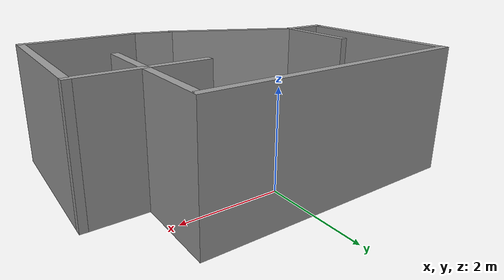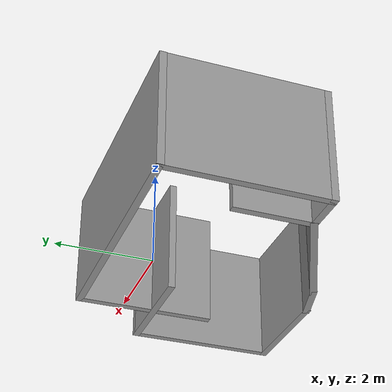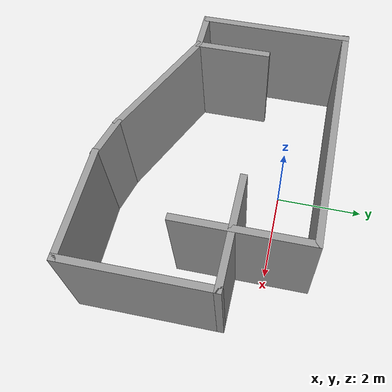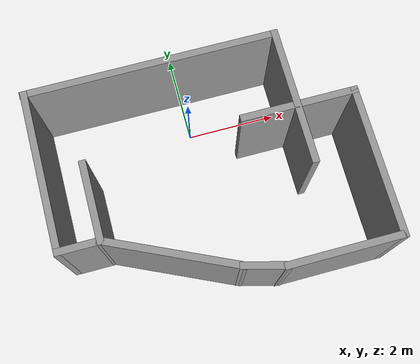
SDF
<?xml version='1.0'?>
<sdf version='1.7'>
  <model name='arena'>
    <pose>0.063599 -1.44493 0 0 -0 0</pose>
    <link name='Wall_10'>
      <collision name='Wall_10_Collision'>
        <geometry>
          <box>
            <size>1 0.15 2.5</size>
          </box>
        </geometry>
        <pose>0 0 1.25 0 -0 0</pose>
      </collision>
      <visual name='Wall_10_Visual'>
        <pose>0 0 1.25 0 -0 0</pose>
        <geometry>
          <box>
            <size>1 0.15 2.5</size>
          </box>
        </geometry>
        <material>
          <script>
            <uri>file://media/materials/scripts/gazebo.material</uri>
            <name>Gazebo/Grey</name>
          </script>
          <ambient>1 1 1 1</ambient>
        </material>
        <meta>
          <layer>0</layer>
        </meta>
      </visual>
      <pose>-2.8481 -0.969074 0 0 -0 0</pose>
    </link>
    <link name='Wall_13'>
      <collision name='Wall_13_Collision'>
        <geometry>
          <box>
            <size>2.94422 0.15 2.5</size>
          </box>
        </geometry>
        <pose>0 0 1.25 0 -0 0</pose>
      </collision>
      <visual name='Wall_13_Visual'>
        <pose>0 0 1.25 0 -0 0</pose>
        <geometry>
          <box>
            <size>2.94422 0.15 2.5</size>
          </box>
        </geometry>
        <material>
          <script>
            <uri>file://media/materials/scripts/gazebo.material</uri>
            <name>Gazebo/Grey</name>
          </script>
          <ambient>1 1 1 1</ambient>
        </material>
        <meta>
          <layer>0</layer>
        </meta>
      </visual>
      <pose>-1.15552 -1.55657 0 0 -0 -0.434009</pose>
    </link>
    <link name='Wall_14'>
      <collision name='Wall_14_Collision'>
        <geometry>
          <box>
            <size>1 0.15 2.5</size>
          </box>
        </geometry>
        <pose>0 0 1.25 0 -0 0</pose>
      </collision>
      <visual name='Wall_14_Visual'>
        <pose>0 0 1.25 0 -0 0</pose>
        <geometry>
          <box>
            <size>1 0.15 2.5</size>
          </box>
        </geometry>
        <material>
          <script>
            <uri>file://media/materials/scripts/gazebo.material</uri>
            <name>Gazebo/Grey</name>
          </script>
          <ambient>1 1 1 1</ambient>
        </material>
        <meta>
          <layer>0</layer>
        </meta>
      </visual>
      <pose>0.52258 -2.25407 0 0 -0 -0.261799</pose>
    </link>
    <link name='Wall_17'>
      <collision name='Wall_17_Collision'>
        <geometry>
          <box>
            <size>2.5 0.15 2.5</size>
          </box>
        </geometry>
        <pose>0 0 1.25 0 -0 0</pose>
      </collision>
      <visual name='Wall_17_Visual'>
        <pose>0 0 1.25 0 -0 0</pose>
        <geometry>
          <box>
            <size>2.5 0.15 2.5</size>
          </box>
        </geometry>
        <material>
          <script>
            <uri>file://media/materials/scripts/gazebo.material</uri>
            <name>Gazebo/Grey</name>
          </script>
          <ambient>1 1 1 1</ambient>
        </material>
        <meta>
          <layer>0</layer>
        </meta>
      </visual>
      <pose>2.1081 -2.36407 0 0 -0 0</pose>
    </link>
    <link name='Wall_18'>
      <collision name='Wall_18_Collision'>
        <geometry>
          <box>
            <size>3.25 0.15 2.5</size>
          </box>
        </geometry>
        <pose>0 0 1.25 0 -0 0</pose>
      </collision>
      <visual name='Wall_18_Visual'>
        <pose>0 0 1.25 0 -0 0</pose>
        <geometry>
          <box>
            <size>3.25 0.15 2.5</size>
          </box>
        </geometry>
        <material>
          <script>
            <uri>file://media/materials/scripts/gazebo.material</uri>
            <name>Gazebo/Grey</name>
          </script>
          <ambient>1 1 1 1</ambient>
        </material>
        <meta>
          <layer>0</layer>
        </meta>
      </visual>
      <pose>3.2831 -0.81407 0 0 -0 1.5708</pose>
    </link>
    <link name='Wall_19'>
      <collision name='Wall_19_Collision'>
        <geometry>
          <box>
            <size>2.5 0.15 2.5</size>
          </box>
        </geometry>
        <pose>0 0 1.25 0 -0 0</pose>
      </collision>
      <visual name='Wall_19_Visual'>
        <pose>0 0 1.25 0 -0 0</pose>
        <geometry>
          <box>
            <size>2.5 0.15 2.5</size>
          </box>
        </geometry>
        <material>
          <script>
            <uri>file://media/materials/scripts/gazebo.material</uri>
            <name>Gazebo/Grey</name>
          </script>
          <ambient>1 1 1 1</ambient>
        </material>
        <meta>
          <layer>0</layer>
        </meta>
      </visual>
      <pose>2.1081 0.73593 0 0 -0 3.14159</pose>
    </link>
    <link name='Wall_22'>
      <collision name='Wall_22_Collision'>
        <geometry>
          <box>
            <size>3 0.15 2.5</size>
          </box>
        </geometry>
        <pose>0 0 1.25 0 -0 0</pose>
      </collision>
      <visual name='Wall_22_Visual'>
        <pose>0 0 1.25 0 -0 0</pose>
        <geometry>
          <box>
            <size>3 0.15 2.5</size>
          </box>
        </geometry>
        <material>
          <script>
            <uri>file://media/materials/scripts/gazebo.material</uri>
            <name>Gazebo/Grey</name>
          </script>
          <ambient>1 1 1 1</ambient>
        </material>
        <meta>
          <layer>0</layer>
        </meta>
      </visual>
      <pose>2.0669 0.955926 0 0 -0 -1.5708</pose>
    </link>
    <link name='Wall_24'>
      <collision name='Wall_24_Collision'>
        <geometry>
          <box>
            <size>1.75 0.15 2.5</size>
          </box>
        </geometry>
        <pose>0 0 1.25 0 -0 0</pose>
      </collision>
      <visual name='Wall_24_Visual'>
        <pose>0 0 1.25 0 -0 0</pose>
        <geometry>
          <box>
            <size>1.75 0.15 2.5</size>
          </box>
        </geometry>
        <material>
          <script>
            <uri>file://media/materials/scripts/gazebo.material</uri>
            <name>Gazebo/Grey</name>
          </script>
          <ambient>1 1 1 1</ambient>
        </material>
        <meta>
          <layer>0</layer>
        </meta>
      </visual>
      <pose>-2.4231 -0.169074 0 0 -0 1.5708</pose>
    </link>
    <link name='Wall_4'>
      <collision name='Wall_4_Collision'>
        <geometry>
          <box>
            <size>3.5 0.15 2.5</size>
          </box>
        </geometry>
        <pose>0 0 1.25 0 -0 0</pose>
      </collision>
      <visual name='Wall_4_Visual'>
        <pose>0 0 1.25 0 -0 0</pose>
        <geometry>
          <box>
            <size>3.5 0.15 2.5</size>
          </box>
        </geometry>
        <material>
          <script>
            <uri>file://media/materials/scripts/gazebo.material</uri>
            <name>Gazebo/Grey</name>
          </script>
          <ambient>1 1 1 1</ambient>
        </material>
        <meta>
          <layer>0</layer>
        </meta>
      </visual>
      <pose>-3.2731 0.705926 0 0 -0 1.5708</pose>
    </link>
    <link name='Wall_7'>
      <collision name='Wall_7_Collision'>
        <geometry>
          <box>
            <size>5.5 0.15 2.5</size>
          </box>
        </geometry>
        <pose>0 0 1.25 0 -0 0</pose>
      </collision>
      <visual name='Wall_7_Visual'>
        <pose>0 0 1.25 0 -0 0</pose>
        <geometry>
          <box>
            <size>5.5 0.15 2.5</size>
          </box>
        </geometry>
        <material>
          <script>
            <uri>file://media/materials/scripts/gazebo.material</uri>
            <name>Gazebo/Grey</name>
          </script>
          <ambient>1 1 1 1</ambient>
        </material>
        <meta>
          <layer>0</layer>
        </meta>
      </visual>
      <pose>-0.608099 2.38093 0 0 -0 0</pose>
    </link>
    <static>1</static>
  </model>
</sdf>
